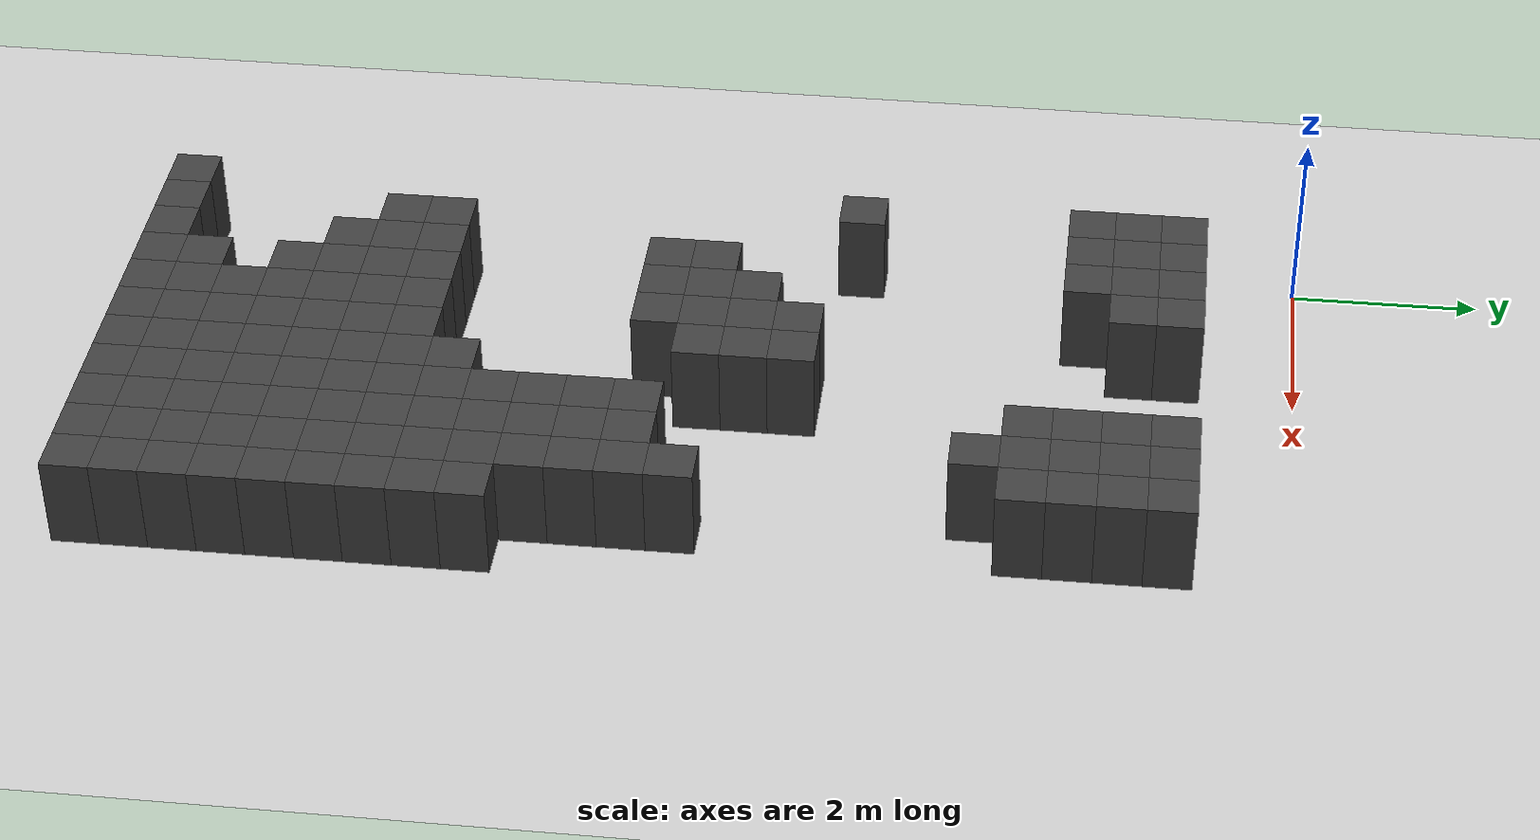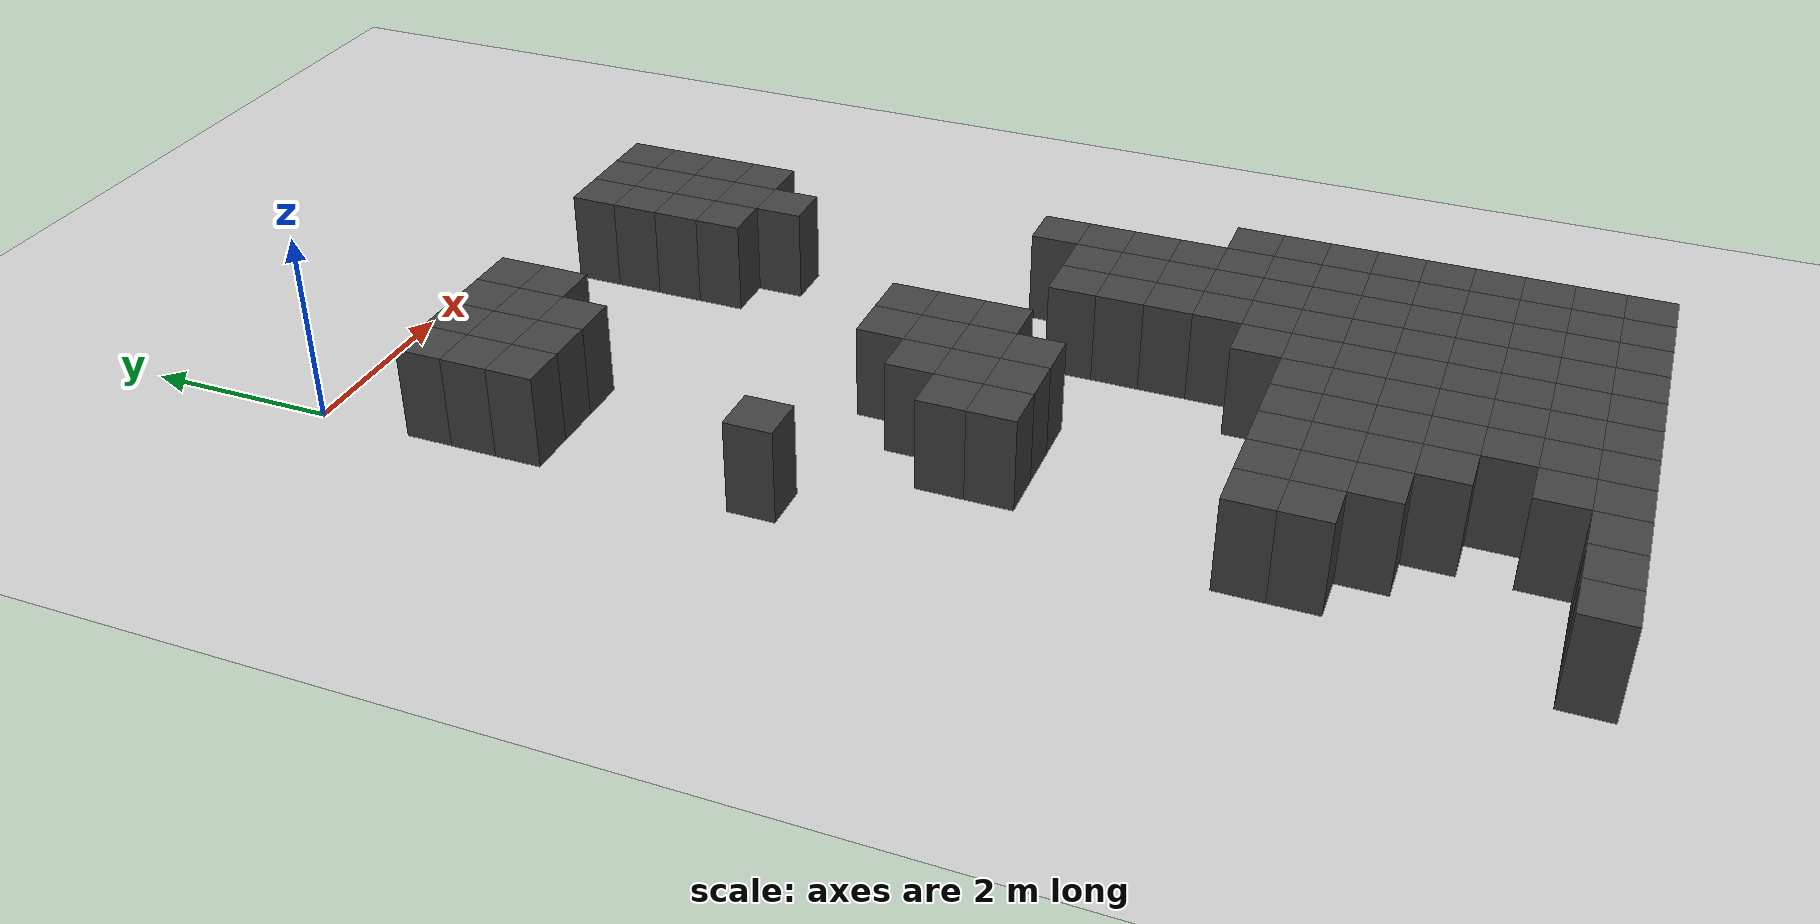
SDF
<sdf version="1.7">
 <world name="map_9826">
  <model name="ground_plane">
   <static>true</static>
   <link name="link">
    <collision name="collision">
     <geometry><plane><normal>0 0 1</normal><size>200 200</size></plane></geometry>
    </collision>
    <visual name="visual">
     <geometry><plane><normal>0 0 1</normal><size>200 200</size></plane></geometry>
     <material><ambient>0.8 0.8 0.8 1</ambient><diffuse>0.8 0.8 0.8 1</diffuse></material>
    </visual>
   </link>
  </model>
  <model name="maze_environment">
   <static>true</static>
   <link name="wall_594">
    <pose>0.250 -1.250 0.500 0 0 0</pose>
    <collision name="col"><geometry><box><size>0.5 0.5 1.0</size></box></geometry></collision>
    <visual name="vis">
     <geometry><box><size>0.5 0.5 1.0</size></box></geometry>
     <material><ambient>0.15 0.15 0.15 1</ambient><diffuse>0.25 0.25 0.25 1</diffuse></material>
    </visual>
   </link>
   <link name="wall_595">
    <pose>0.750 -1.250 0.500 0 0 0</pose>
    <collision name="col"><geometry><box><size>0.5 0.5 1.0</size></box></geometry></collision>
    <visual name="vis">
     <geometry><box><size>0.5 0.5 1.0</size></box></geometry>
     <material><ambient>0.15 0.15 0.15 1</ambient><diffuse>0.25 0.25 0.25 1</diffuse></material>
    </visual>
   </link>
   <link name="wall_596">
    <pose>1.250 -1.250 0.500 0 0 0</pose>
    <collision name="col"><geometry><box><size>0.5 0.5 1.0</size></box></geometry></collision>
    <visual name="vis">
     <geometry><box><size>0.5 0.5 1.0</size></box></geometry>
     <material><ambient>0.15 0.15 0.15 1</ambient><diffuse>0.25 0.25 0.25 1</diffuse></material>
    </visual>
   </link>
   <link name="wall_597">
    <pose>1.750 -1.250 0.500 0 0 0</pose>
    <collision name="col"><geometry><box><size>0.5 0.5 1.0</size></box></geometry></collision>
    <visual name="vis">
     <geometry><box><size>0.5 0.5 1.0</size></box></geometry>
     <material><ambient>0.15 0.15 0.15 1</ambient><diffuse>0.25 0.25 0.25 1</diffuse></material>
    </visual>
   </link>
   <link name="wall_598">
    <pose>3.750 -1.250 0.500 0 0 0</pose>
    <collision name="col"><geometry><box><size>0.5 0.5 1.0</size></box></geometry></collision>
    <visual name="vis">
     <geometry><box><size>0.5 0.5 1.0</size></box></geometry>
     <material><ambient>0.15 0.15 0.15 1</ambient><diffuse>0.25 0.25 0.25 1</diffuse></material>
    </visual>
   </link>
   <link name="wall_599">
    <pose>4.250 -1.250 0.500 0 0 0</pose>
    <collision name="col"><geometry><box><size>0.5 0.5 1.0</size></box></geometry></collision>
    <visual name="vis">
     <geometry><box><size>0.5 0.5 1.0</size></box></geometry>
     <material><ambient>0.15 0.15 0.15 1</ambient><diffuse>0.25 0.25 0.25 1</diffuse></material>
    </visual>
   </link>
   <link name="wall_600">
    <pose>4.750 -1.250 0.500 0 0 0</pose>
    <collision name="col"><geometry><box><size>0.5 0.5 1.0</size></box></geometry></collision>
    <visual name="vis">
     <geometry><box><size>0.5 0.5 1.0</size></box></geometry>
     <material><ambient>0.15 0.15 0.15 1</ambient><diffuse>0.25 0.25 0.25 1</diffuse></material>
    </visual>
   </link>
   <link name="wall_617">
    <pose>0.250 -1.750 0.500 0 0 0</pose>
    <collision name="col"><geometry><box><size>0.5 0.5 1.0</size></box></geometry></collision>
    <visual name="vis">
     <geometry><box><size>0.5 0.5 1.0</size></box></geometry>
     <material><ambient>0.15 0.15 0.15 1</ambient><diffuse>0.25 0.25 0.25 1</diffuse></material>
    </visual>
   </link>
   <link name="wall_618">
    <pose>0.750 -1.750 0.500 0 0 0</pose>
    <collision name="col"><geometry><box><size>0.5 0.5 1.0</size></box></geometry></collision>
    <visual name="vis">
     <geometry><box><size>0.5 0.5 1.0</size></box></geometry>
     <material><ambient>0.15 0.15 0.15 1</ambient><diffuse>0.25 0.25 0.25 1</diffuse></material>
    </visual>
   </link>
   <link name="wall_619">
    <pose>1.250 -1.750 0.500 0 0 0</pose>
    <collision name="col"><geometry><box><size>0.5 0.5 1.0</size></box></geometry></collision>
    <visual name="vis">
     <geometry><box><size>0.5 0.5 1.0</size></box></geometry>
     <material><ambient>0.15 0.15 0.15 1</ambient><diffuse>0.25 0.25 0.25 1</diffuse></material>
    </visual>
   </link>
   <link name="wall_620">
    <pose>1.750 -1.750 0.500 0 0 0</pose>
    <collision name="col"><geometry><box><size>0.5 0.5 1.0</size></box></geometry></collision>
    <visual name="vis">
     <geometry><box><size>0.5 0.5 1.0</size></box></geometry>
     <material><ambient>0.15 0.15 0.15 1</ambient><diffuse>0.25 0.25 0.25 1</diffuse></material>
    </visual>
   </link>
   <link name="wall_621">
    <pose>3.750 -1.750 0.500 0 0 0</pose>
    <collision name="col"><geometry><box><size>0.5 0.5 1.0</size></box></geometry></collision>
    <visual name="vis">
     <geometry><box><size>0.5 0.5 1.0</size></box></geometry>
     <material><ambient>0.15 0.15 0.15 1</ambient><diffuse>0.25 0.25 0.25 1</diffuse></material>
    </visual>
   </link>
   <link name="wall_622">
    <pose>4.250 -1.750 0.500 0 0 0</pose>
    <collision name="col"><geometry><box><size>0.5 0.5 1.0</size></box></geometry></collision>
    <visual name="vis">
     <geometry><box><size>0.5 0.5 1.0</size></box></geometry>
     <material><ambient>0.15 0.15 0.15 1</ambient><diffuse>0.25 0.25 0.25 1</diffuse></material>
    </visual>
   </link>
   <link name="wall_623">
    <pose>4.750 -1.750 0.500 0 0 0</pose>
    <collision name="col"><geometry><box><size>0.5 0.5 1.0</size></box></geometry></collision>
    <visual name="vis">
     <geometry><box><size>0.5 0.5 1.0</size></box></geometry>
     <material><ambient>0.15 0.15 0.15 1</ambient><diffuse>0.25 0.25 0.25 1</diffuse></material>
    </visual>
   </link>
   <link name="wall_639">
    <pose>0.250 -2.250 0.500 0 0 0</pose>
    <collision name="col"><geometry><box><size>0.5 0.5 1.0</size></box></geometry></collision>
    <visual name="vis">
     <geometry><box><size>0.5 0.5 1.0</size></box></geometry>
     <material><ambient>0.15 0.15 0.15 1</ambient><diffuse>0.25 0.25 0.25 1</diffuse></material>
    </visual>
   </link>
   <link name="wall_640">
    <pose>0.750 -2.250 0.500 0 0 0</pose>
    <collision name="col"><geometry><box><size>0.5 0.5 1.0</size></box></geometry></collision>
    <visual name="vis">
     <geometry><box><size>0.5 0.5 1.0</size></box></geometry>
     <material><ambient>0.15 0.15 0.15 1</ambient><diffuse>0.25 0.25 0.25 1</diffuse></material>
    </visual>
   </link>
   <link name="wall_641">
    <pose>1.250 -2.250 0.500 0 0 0</pose>
    <collision name="col"><geometry><box><size>0.5 0.5 1.0</size></box></geometry></collision>
    <visual name="vis">
     <geometry><box><size>0.5 0.5 1.0</size></box></geometry>
     <material><ambient>0.15 0.15 0.15 1</ambient><diffuse>0.25 0.25 0.25 1</diffuse></material>
    </visual>
   </link>
   <link name="wall_642">
    <pose>3.750 -2.250 0.500 0 0 0</pose>
    <collision name="col"><geometry><box><size>0.5 0.5 1.0</size></box></geometry></collision>
    <visual name="vis">
     <geometry><box><size>0.5 0.5 1.0</size></box></geometry>
     <material><ambient>0.15 0.15 0.15 1</ambient><diffuse>0.25 0.25 0.25 1</diffuse></material>
    </visual>
   </link>
   <link name="wall_643">
    <pose>4.250 -2.250 0.500 0 0 0</pose>
    <collision name="col"><geometry><box><size>0.5 0.5 1.0</size></box></geometry></collision>
    <visual name="vis">
     <geometry><box><size>0.5 0.5 1.0</size></box></geometry>
     <material><ambient>0.15 0.15 0.15 1</ambient><diffuse>0.25 0.25 0.25 1</diffuse></material>
    </visual>
   </link>
   <link name="wall_644">
    <pose>4.750 -2.250 0.500 0 0 0</pose>
    <collision name="col"><geometry><box><size>0.5 0.5 1.0</size></box></geometry></collision>
    <visual name="vis">
     <geometry><box><size>0.5 0.5 1.0</size></box></geometry>
     <material><ambient>0.15 0.15 0.15 1</ambient><diffuse>0.25 0.25 0.25 1</diffuse></material>
    </visual>
   </link>
   <link name="wall_657">
    <pose>3.750 -2.750 0.500 0 0 0</pose>
    <collision name="col"><geometry><box><size>0.5 0.5 1.0</size></box></geometry></collision>
    <visual name="vis">
     <geometry><box><size>0.5 0.5 1.0</size></box></geometry>
     <material><ambient>0.15 0.15 0.15 1</ambient><diffuse>0.25 0.25 0.25 1</diffuse></material>
    </visual>
   </link>
   <link name="wall_658">
    <pose>4.250 -2.750 0.500 0 0 0</pose>
    <collision name="col"><geometry><box><size>0.5 0.5 1.0</size></box></geometry></collision>
    <visual name="vis">
     <geometry><box><size>0.5 0.5 1.0</size></box></geometry>
     <material><ambient>0.15 0.15 0.15 1</ambient><diffuse>0.25 0.25 0.25 1</diffuse></material>
    </visual>
   </link>
   <link name="wall_659">
    <pose>4.750 -2.750 0.500 0 0 0</pose>
    <collision name="col"><geometry><box><size>0.5 0.5 1.0</size></box></geometry></collision>
    <visual name="vis">
     <geometry><box><size>0.5 0.5 1.0</size></box></geometry>
     <material><ambient>0.15 0.15 0.15 1</ambient><diffuse>0.25 0.25 0.25 1</diffuse></material>
    </visual>
   </link>
   <link name="wall_672">
    <pose>4.250 -3.250 0.500 0 0 0</pose>
    <collision name="col"><geometry><box><size>0.5 0.5 1.0</size></box></geometry></collision>
    <visual name="vis">
     <geometry><box><size>0.5 0.5 1.0</size></box></geometry>
     <material><ambient>0.15 0.15 0.15 1</ambient><diffuse>0.25 0.25 0.25 1</diffuse></material>
    </visual>
   </link>
   <link name="wall_709">
    <pose>0.250 -4.750 0.500 0 0 0</pose>
    <collision name="col"><geometry><box><size>0.5 0.5 1.0</size></box></geometry></collision>
    <visual name="vis">
     <geometry><box><size>0.5 0.5 1.0</size></box></geometry>
     <material><ambient>0.15 0.15 0.15 1</ambient><diffuse>0.25 0.25 0.25 1</diffuse></material>
    </visual>
   </link>
   <link name="wall_726">
    <pose>2.250 -5.250 0.500 0 0 0</pose>
    <collision name="col"><geometry><box><size>0.5 0.5 1.0</size></box></geometry></collision>
    <visual name="vis">
     <geometry><box><size>0.5 0.5 1.0</size></box></geometry>
     <material><ambient>0.15 0.15 0.15 1</ambient><diffuse>0.25 0.25 0.25 1</diffuse></material>
    </visual>
   </link>
   <link name="wall_727">
    <pose>2.750 -5.250 0.500 0 0 0</pose>
    <collision name="col"><geometry><box><size>0.5 0.5 1.0</size></box></geometry></collision>
    <visual name="vis">
     <geometry><box><size>0.5 0.5 1.0</size></box></geometry>
     <material><ambient>0.15 0.15 0.15 1</ambient><diffuse>0.25 0.25 0.25 1</diffuse></material>
    </visual>
   </link>
   <link name="wall_745">
    <pose>1.750 -5.750 0.500 0 0 0</pose>
    <collision name="col"><geometry><box><size>0.5 0.5 1.0</size></box></geometry></collision>
    <visual name="vis">
     <geometry><box><size>0.5 0.5 1.0</size></box></geometry>
     <material><ambient>0.15 0.15 0.15 1</ambient><diffuse>0.25 0.25 0.25 1</diffuse></material>
    </visual>
   </link>
   <link name="wall_746">
    <pose>2.250 -5.750 0.500 0 0 0</pose>
    <collision name="col"><geometry><box><size>0.5 0.5 1.0</size></box></geometry></collision>
    <visual name="vis">
     <geometry><box><size>0.5 0.5 1.0</size></box></geometry>
     <material><ambient>0.15 0.15 0.15 1</ambient><diffuse>0.25 0.25 0.25 1</diffuse></material>
    </visual>
   </link>
   <link name="wall_747">
    <pose>2.750 -5.750 0.500 0 0 0</pose>
    <collision name="col"><geometry><box><size>0.5 0.5 1.0</size></box></geometry></collision>
    <visual name="vis">
     <geometry><box><size>0.5 0.5 1.0</size></box></geometry>
     <material><ambient>0.15 0.15 0.15 1</ambient><diffuse>0.25 0.25 0.25 1</diffuse></material>
    </visual>
   </link>
   <link name="wall_766">
    <pose>1.250 -6.250 0.500 0 0 0</pose>
    <collision name="col"><geometry><box><size>0.5 0.5 1.0</size></box></geometry></collision>
    <visual name="vis">
     <geometry><box><size>0.5 0.5 1.0</size></box></geometry>
     <material><ambient>0.15 0.15 0.15 1</ambient><diffuse>0.25 0.25 0.25 1</diffuse></material>
    </visual>
   </link>
   <link name="wall_767">
    <pose>1.750 -6.250 0.500 0 0 0</pose>
    <collision name="col"><geometry><box><size>0.5 0.5 1.0</size></box></geometry></collision>
    <visual name="vis">
     <geometry><box><size>0.5 0.5 1.0</size></box></geometry>
     <material><ambient>0.15 0.15 0.15 1</ambient><diffuse>0.25 0.25 0.25 1</diffuse></material>
    </visual>
   </link>
   <link name="wall_768">
    <pose>2.250 -6.250 0.500 0 0 0</pose>
    <collision name="col"><geometry><box><size>0.5 0.5 1.0</size></box></geometry></collision>
    <visual name="vis">
     <geometry><box><size>0.5 0.5 1.0</size></box></geometry>
     <material><ambient>0.15 0.15 0.15 1</ambient><diffuse>0.25 0.25 0.25 1</diffuse></material>
    </visual>
   </link>
   <link name="wall_769">
    <pose>2.750 -6.250 0.500 0 0 0</pose>
    <collision name="col"><geometry><box><size>0.5 0.5 1.0</size></box></geometry></collision>
    <visual name="vis">
     <geometry><box><size>0.5 0.5 1.0</size></box></geometry>
     <material><ambient>0.15 0.15 0.15 1</ambient><diffuse>0.25 0.25 0.25 1</diffuse></material>
    </visual>
   </link>
   <link name="wall_770">
    <pose>4.750 -6.250 0.500 0 0 0</pose>
    <collision name="col"><geometry><box><size>0.5 0.5 1.0</size></box></geometry></collision>
    <visual name="vis">
     <geometry><box><size>0.5 0.5 1.0</size></box></geometry>
     <material><ambient>0.15 0.15 0.15 1</ambient><diffuse>0.25 0.25 0.25 1</diffuse></material>
    </visual>
   </link>
   <link name="wall_788">
    <pose>1.250 -6.750 0.500 0 0 0</pose>
    <collision name="col"><geometry><box><size>0.5 0.5 1.0</size></box></geometry></collision>
    <visual name="vis">
     <geometry><box><size>0.5 0.5 1.0</size></box></geometry>
     <material><ambient>0.15 0.15 0.15 1</ambient><diffuse>0.25 0.25 0.25 1</diffuse></material>
    </visual>
   </link>
   <link name="wall_789">
    <pose>1.750 -6.750 0.500 0 0 0</pose>
    <collision name="col"><geometry><box><size>0.5 0.5 1.0</size></box></geometry></collision>
    <visual name="vis">
     <geometry><box><size>0.5 0.5 1.0</size></box></geometry>
     <material><ambient>0.15 0.15 0.15 1</ambient><diffuse>0.25 0.25 0.25 1</diffuse></material>
    </visual>
   </link>
   <link name="wall_790">
    <pose>2.250 -6.750 0.500 0 0 0</pose>
    <collision name="col"><geometry><box><size>0.5 0.5 1.0</size></box></geometry></collision>
    <visual name="vis">
     <geometry><box><size>0.5 0.5 1.0</size></box></geometry>
     <material><ambient>0.15 0.15 0.15 1</ambient><diffuse>0.25 0.25 0.25 1</diffuse></material>
    </visual>
   </link>
   <link name="wall_791">
    <pose>3.750 -6.750 0.500 0 0 0</pose>
    <collision name="col"><geometry><box><size>0.5 0.5 1.0</size></box></geometry></collision>
    <visual name="vis">
     <geometry><box><size>0.5 0.5 1.0</size></box></geometry>
     <material><ambient>0.15 0.15 0.15 1</ambient><diffuse>0.25 0.25 0.25 1</diffuse></material>
    </visual>
   </link>
   <link name="wall_792">
    <pose>4.250 -6.750 0.500 0 0 0</pose>
    <collision name="col"><geometry><box><size>0.5 0.5 1.0</size></box></geometry></collision>
    <visual name="vis">
     <geometry><box><size>0.5 0.5 1.0</size></box></geometry>
     <material><ambient>0.15 0.15 0.15 1</ambient><diffuse>0.25 0.25 0.25 1</diffuse></material>
    </visual>
   </link>
   <link name="wall_793">
    <pose>4.750 -6.750 0.500 0 0 0</pose>
    <collision name="col"><geometry><box><size>0.5 0.5 1.0</size></box></geometry></collision>
    <visual name="vis">
     <geometry><box><size>0.5 0.5 1.0</size></box></geometry>
     <material><ambient>0.15 0.15 0.15 1</ambient><diffuse>0.25 0.25 0.25 1</diffuse></material>
    </visual>
   </link>
   <link name="wall_809">
    <pose>3.750 -7.250 0.500 0 0 0</pose>
    <collision name="col"><geometry><box><size>0.5 0.5 1.0</size></box></geometry></collision>
    <visual name="vis">
     <geometry><box><size>0.5 0.5 1.0</size></box></geometry>
     <material><ambient>0.15 0.15 0.15 1</ambient><diffuse>0.25 0.25 0.25 1</diffuse></material>
    </visual>
   </link>
   <link name="wall_810">
    <pose>4.250 -7.250 0.500 0 0 0</pose>
    <collision name="col"><geometry><box><size>0.5 0.5 1.0</size></box></geometry></collision>
    <visual name="vis">
     <geometry><box><size>0.5 0.5 1.0</size></box></geometry>
     <material><ambient>0.15 0.15 0.15 1</ambient><diffuse>0.25 0.25 0.25 1</diffuse></material>
    </visual>
   </link>
   <link name="wall_811">
    <pose>4.750 -7.250 0.500 0 0 0</pose>
    <collision name="col"><geometry><box><size>0.5 0.5 1.0</size></box></geometry></collision>
    <visual name="vis">
     <geometry><box><size>0.5 0.5 1.0</size></box></geometry>
     <material><ambient>0.15 0.15 0.15 1</ambient><diffuse>0.25 0.25 0.25 1</diffuse></material>
    </visual>
   </link>
   <link name="wall_825">
    <pose>3.750 -7.750 0.500 0 0 0</pose>
    <collision name="col"><geometry><box><size>0.5 0.5 1.0</size></box></geometry></collision>
    <visual name="vis">
     <geometry><box><size>0.5 0.5 1.0</size></box></geometry>
     <material><ambient>0.15 0.15 0.15 1</ambient><diffuse>0.25 0.25 0.25 1</diffuse></material>
    </visual>
   </link>
   <link name="wall_826">
    <pose>4.250 -7.750 0.500 0 0 0</pose>
    <collision name="col"><geometry><box><size>0.5 0.5 1.0</size></box></geometry></collision>
    <visual name="vis">
     <geometry><box><size>0.5 0.5 1.0</size></box></geometry>
     <material><ambient>0.15 0.15 0.15 1</ambient><diffuse>0.25 0.25 0.25 1</diffuse></material>
    </visual>
   </link>
   <link name="wall_827">
    <pose>4.750 -7.750 0.500 0 0 0</pose>
    <collision name="col"><geometry><box><size>0.5 0.5 1.0</size></box></geometry></collision>
    <visual name="vis">
     <geometry><box><size>0.5 0.5 1.0</size></box></geometry>
     <material><ambient>0.15 0.15 0.15 1</ambient><diffuse>0.25 0.25 0.25 1</diffuse></material>
    </visual>
   </link>
   <link name="wall_844">
    <pose>3.750 -8.250 0.500 0 0 0</pose>
    <collision name="col"><geometry><box><size>0.5 0.5 1.0</size></box></geometry></collision>
    <visual name="vis">
     <geometry><box><size>0.5 0.5 1.0</size></box></geometry>
     <material><ambient>0.15 0.15 0.15 1</ambient><diffuse>0.25 0.25 0.25 1</diffuse></material>
    </visual>
   </link>
   <link name="wall_845">
    <pose>4.250 -8.250 0.500 0 0 0</pose>
    <collision name="col"><geometry><box><size>0.5 0.5 1.0</size></box></geometry></collision>
    <visual name="vis">
     <geometry><box><size>0.5 0.5 1.0</size></box></geometry>
     <material><ambient>0.15 0.15 0.15 1</ambient><diffuse>0.25 0.25 0.25 1</diffuse></material>
    </visual>
   </link>
   <link name="wall_846">
    <pose>4.750 -8.250 0.500 0 0 0</pose>
    <collision name="col"><geometry><box><size>0.5 0.5 1.0</size></box></geometry></collision>
    <visual name="vis">
     <geometry><box><size>0.5 0.5 1.0</size></box></geometry>
     <material><ambient>0.15 0.15 0.15 1</ambient><diffuse>0.25 0.25 0.25 1</diffuse></material>
    </visual>
   </link>
   <link name="wall_847">
    <pose>5.250 -8.250 0.500 0 0 0</pose>
    <collision name="col"><geometry><box><size>0.5 0.5 1.0</size></box></geometry></collision>
    <visual name="vis">
     <geometry><box><size>0.5 0.5 1.0</size></box></geometry>
     <material><ambient>0.15 0.15 0.15 1</ambient><diffuse>0.25 0.25 0.25 1</diffuse></material>
    </visual>
   </link>
   <link name="wall_863">
    <pose>3.250 -8.750 0.500 0 0 0</pose>
    <collision name="col"><geometry><box><size>0.5 0.5 1.0</size></box></geometry></collision>
    <visual name="vis">
     <geometry><box><size>0.5 0.5 1.0</size></box></geometry>
     <material><ambient>0.15 0.15 0.15 1</ambient><diffuse>0.25 0.25 0.25 1</diffuse></material>
    </visual>
   </link>
   <link name="wall_864">
    <pose>3.750 -8.750 0.500 0 0 0</pose>
    <collision name="col"><geometry><box><size>0.5 0.5 1.0</size></box></geometry></collision>
    <visual name="vis">
     <geometry><box><size>0.5 0.5 1.0</size></box></geometry>
     <material><ambient>0.15 0.15 0.15 1</ambient><diffuse>0.25 0.25 0.25 1</diffuse></material>
    </visual>
   </link>
   <link name="wall_865">
    <pose>4.250 -8.750 0.500 0 0 0</pose>
    <collision name="col"><geometry><box><size>0.5 0.5 1.0</size></box></geometry></collision>
    <visual name="vis">
     <geometry><box><size>0.5 0.5 1.0</size></box></geometry>
     <material><ambient>0.15 0.15 0.15 1</ambient><diffuse>0.25 0.25 0.25 1</diffuse></material>
    </visual>
   </link>
   <link name="wall_866">
    <pose>4.750 -8.750 0.500 0 0 0</pose>
    <collision name="col"><geometry><box><size>0.5 0.5 1.0</size></box></geometry></collision>
    <visual name="vis">
     <geometry><box><size>0.5 0.5 1.0</size></box></geometry>
     <material><ambient>0.15 0.15 0.15 1</ambient><diffuse>0.25 0.25 0.25 1</diffuse></material>
    </visual>
   </link>
   <link name="wall_867">
    <pose>5.250 -8.750 0.500 0 0 0</pose>
    <collision name="col"><geometry><box><size>0.5 0.5 1.0</size></box></geometry></collision>
    <visual name="vis">
     <geometry><box><size>0.5 0.5 1.0</size></box></geometry>
     <material><ambient>0.15 0.15 0.15 1</ambient><diffuse>0.25 0.25 0.25 1</diffuse></material>
    </visual>
   </link>
   <link name="wall_884">
    <pose>0.750 -9.250 0.500 0 0 0</pose>
    <collision name="col"><geometry><box><size>0.5 0.5 1.0</size></box></geometry></collision>
    <visual name="vis">
     <geometry><box><size>0.5 0.5 1.0</size></box></geometry>
     <material><ambient>0.15 0.15 0.15 1</ambient><diffuse>0.25 0.25 0.25 1</diffuse></material>
    </visual>
   </link>
   <link name="wall_885">
    <pose>1.250 -9.250 0.500 0 0 0</pose>
    <collision name="col"><geometry><box><size>0.5 0.5 1.0</size></box></geometry></collision>
    <visual name="vis">
     <geometry><box><size>0.5 0.5 1.0</size></box></geometry>
     <material><ambient>0.15 0.15 0.15 1</ambient><diffuse>0.25 0.25 0.25 1</diffuse></material>
    </visual>
   </link>
   <link name="wall_886">
    <pose>1.750 -9.250 0.500 0 0 0</pose>
    <collision name="col"><geometry><box><size>0.5 0.5 1.0</size></box></geometry></collision>
    <visual name="vis">
     <geometry><box><size>0.5 0.5 1.0</size></box></geometry>
     <material><ambient>0.15 0.15 0.15 1</ambient><diffuse>0.25 0.25 0.25 1</diffuse></material>
    </visual>
   </link>
   <link name="wall_887">
    <pose>2.250 -9.250 0.500 0 0 0</pose>
    <collision name="col"><geometry><box><size>0.5 0.5 1.0</size></box></geometry></collision>
    <visual name="vis">
     <geometry><box><size>0.5 0.5 1.0</size></box></geometry>
     <material><ambient>0.15 0.15 0.15 1</ambient><diffuse>0.25 0.25 0.25 1</diffuse></material>
    </visual>
   </link>
   <link name="wall_888">
    <pose>2.750 -9.250 0.500 0 0 0</pose>
    <collision name="col"><geometry><box><size>0.5 0.5 1.0</size></box></geometry></collision>
    <visual name="vis">
     <geometry><box><size>0.5 0.5 1.0</size></box></geometry>
     <material><ambient>0.15 0.15 0.15 1</ambient><diffuse>0.25 0.25 0.25 1</diffuse></material>
    </visual>
   </link>
   <link name="wall_889">
    <pose>3.250 -9.250 0.500 0 0 0</pose>
    <collision name="col"><geometry><box><size>0.5 0.5 1.0</size></box></geometry></collision>
    <visual name="vis">
     <geometry><box><size>0.5 0.5 1.0</size></box></geometry>
     <material><ambient>0.15 0.15 0.15 1</ambient><diffuse>0.25 0.25 0.25 1</diffuse></material>
    </visual>
   </link>
   <link name="wall_890">
    <pose>3.750 -9.250 0.500 0 0 0</pose>
    <collision name="col"><geometry><box><size>0.5 0.5 1.0</size></box></geometry></collision>
    <visual name="vis">
     <geometry><box><size>0.5 0.5 1.0</size></box></geometry>
     <material><ambient>0.15 0.15 0.15 1</ambient><diffuse>0.25 0.25 0.25 1</diffuse></material>
    </visual>
   </link>
   <link name="wall_891">
    <pose>4.250 -9.250 0.500 0 0 0</pose>
    <collision name="col"><geometry><box><size>0.5 0.5 1.0</size></box></geometry></collision>
    <visual name="vis">
     <geometry><box><size>0.5 0.5 1.0</size></box></geometry>
     <material><ambient>0.15 0.15 0.15 1</ambient><diffuse>0.25 0.25 0.25 1</diffuse></material>
    </visual>
   </link>
   <link name="wall_892">
    <pose>4.750 -9.250 0.500 0 0 0</pose>
    <collision name="col"><geometry><box><size>0.5 0.5 1.0</size></box></geometry></collision>
    <visual name="vis">
     <geometry><box><size>0.5 0.5 1.0</size></box></geometry>
     <material><ambient>0.15 0.15 0.15 1</ambient><diffuse>0.25 0.25 0.25 1</diffuse></material>
    </visual>
   </link>
   <link name="wall_893">
    <pose>5.250 -9.250 0.500 0 0 0</pose>
    <collision name="col"><geometry><box><size>0.5 0.5 1.0</size></box></geometry></collision>
    <visual name="vis">
     <geometry><box><size>0.5 0.5 1.0</size></box></geometry>
     <material><ambient>0.15 0.15 0.15 1</ambient><diffuse>0.25 0.25 0.25 1</diffuse></material>
    </visual>
   </link>
   <link name="wall_909">
    <pose>0.750 -9.750 0.500 0 0 0</pose>
    <collision name="col"><geometry><box><size>0.5 0.5 1.0</size></box></geometry></collision>
    <visual name="vis">
     <geometry><box><size>0.5 0.5 1.0</size></box></geometry>
     <material><ambient>0.15 0.15 0.15 1</ambient><diffuse>0.25 0.25 0.25 1</diffuse></material>
    </visual>
   </link>
   <link name="wall_910">
    <pose>1.250 -9.750 0.500 0 0 0</pose>
    <collision name="col"><geometry><box><size>0.5 0.5 1.0</size></box></geometry></collision>
    <visual name="vis">
     <geometry><box><size>0.5 0.5 1.0</size></box></geometry>
     <material><ambient>0.15 0.15 0.15 1</ambient><diffuse>0.25 0.25 0.25 1</diffuse></material>
    </visual>
   </link>
   <link name="wall_911">
    <pose>1.750 -9.750 0.500 0 0 0</pose>
    <collision name="col"><geometry><box><size>0.5 0.5 1.0</size></box></geometry></collision>
    <visual name="vis">
     <geometry><box><size>0.5 0.5 1.0</size></box></geometry>
     <material><ambient>0.15 0.15 0.15 1</ambient><diffuse>0.25 0.25 0.25 1</diffuse></material>
    </visual>
   </link>
   <link name="wall_912">
    <pose>2.250 -9.750 0.500 0 0 0</pose>
    <collision name="col"><geometry><box><size>0.5 0.5 1.0</size></box></geometry></collision>
    <visual name="vis">
     <geometry><box><size>0.5 0.5 1.0</size></box></geometry>
     <material><ambient>0.15 0.15 0.15 1</ambient><diffuse>0.25 0.25 0.25 1</diffuse></material>
    </visual>
   </link>
   <link name="wall_913">
    <pose>2.750 -9.750 0.500 0 0 0</pose>
    <collision name="col"><geometry><box><size>0.5 0.5 1.0</size></box></geometry></collision>
    <visual name="vis">
     <geometry><box><size>0.5 0.5 1.0</size></box></geometry>
     <material><ambient>0.15 0.15 0.15 1</ambient><diffuse>0.25 0.25 0.25 1</diffuse></material>
    </visual>
   </link>
   <link name="wall_914">
    <pose>3.250 -9.750 0.500 0 0 0</pose>
    <collision name="col"><geometry><box><size>0.5 0.5 1.0</size></box></geometry></collision>
    <visual name="vis">
     <geometry><box><size>0.5 0.5 1.0</size></box></geometry>
     <material><ambient>0.15 0.15 0.15 1</ambient><diffuse>0.25 0.25 0.25 1</diffuse></material>
    </visual>
   </link>
   <link name="wall_915">
    <pose>3.750 -9.750 0.500 0 0 0</pose>
    <collision name="col"><geometry><box><size>0.5 0.5 1.0</size></box></geometry></collision>
    <visual name="vis">
     <geometry><box><size>0.5 0.5 1.0</size></box></geometry>
     <material><ambient>0.15 0.15 0.15 1</ambient><diffuse>0.25 0.25 0.25 1</diffuse></material>
    </visual>
   </link>
   <link name="wall_916">
    <pose>4.250 -9.750 0.500 0 0 0</pose>
    <collision name="col"><geometry><box><size>0.5 0.5 1.0</size></box></geometry></collision>
    <visual name="vis">
     <geometry><box><size>0.5 0.5 1.0</size></box></geometry>
     <material><ambient>0.15 0.15 0.15 1</ambient><diffuse>0.25 0.25 0.25 1</diffuse></material>
    </visual>
   </link>
   <link name="wall_917">
    <pose>4.750 -9.750 0.500 0 0 0</pose>
    <collision name="col"><geometry><box><size>0.5 0.5 1.0</size></box></geometry></collision>
    <visual name="vis">
     <geometry><box><size>0.5 0.5 1.0</size></box></geometry>
     <material><ambient>0.15 0.15 0.15 1</ambient><diffuse>0.25 0.25 0.25 1</diffuse></material>
    </visual>
   </link>
   <link name="wall_918">
    <pose>5.250 -9.750 0.500 0 0 0</pose>
    <collision name="col"><geometry><box><size>0.5 0.5 1.0</size></box></geometry></collision>
    <visual name="vis">
     <geometry><box><size>0.5 0.5 1.0</size></box></geometry>
     <material><ambient>0.15 0.15 0.15 1</ambient><diffuse>0.25 0.25 0.25 1</diffuse></material>
    </visual>
   </link>
   <link name="wall_933">
    <pose>1.250 -10.250 0.500 0 0 0</pose>
    <collision name="col"><geometry><box><size>0.5 0.5 1.0</size></box></geometry></collision>
    <visual name="vis">
     <geometry><box><size>0.5 0.5 1.0</size></box></geometry>
     <material><ambient>0.15 0.15 0.15 1</ambient><diffuse>0.25 0.25 0.25 1</diffuse></material>
    </visual>
   </link>
   <link name="wall_934">
    <pose>1.750 -10.250 0.500 0 0 0</pose>
    <collision name="col"><geometry><box><size>0.5 0.5 1.0</size></box></geometry></collision>
    <visual name="vis">
     <geometry><box><size>0.5 0.5 1.0</size></box></geometry>
     <material><ambient>0.15 0.15 0.15 1</ambient><diffuse>0.25 0.25 0.25 1</diffuse></material>
    </visual>
   </link>
   <link name="wall_935">
    <pose>2.250 -10.250 0.500 0 0 0</pose>
    <collision name="col"><geometry><box><size>0.5 0.5 1.0</size></box></geometry></collision>
    <visual name="vis">
     <geometry><box><size>0.5 0.5 1.0</size></box></geometry>
     <material><ambient>0.15 0.15 0.15 1</ambient><diffuse>0.25 0.25 0.25 1</diffuse></material>
    </visual>
   </link>
   <link name="wall_936">
    <pose>2.750 -10.250 0.500 0 0 0</pose>
    <collision name="col"><geometry><box><size>0.5 0.5 1.0</size></box></geometry></collision>
    <visual name="vis">
     <geometry><box><size>0.5 0.5 1.0</size></box></geometry>
     <material><ambient>0.15 0.15 0.15 1</ambient><diffuse>0.25 0.25 0.25 1</diffuse></material>
    </visual>
   </link>
   <link name="wall_937">
    <pose>3.250 -10.250 0.500 0 0 0</pose>
    <collision name="col"><geometry><box><size>0.5 0.5 1.0</size></box></geometry></collision>
    <visual name="vis">
     <geometry><box><size>0.5 0.5 1.0</size></box></geometry>
     <material><ambient>0.15 0.15 0.15 1</ambient><diffuse>0.25 0.25 0.25 1</diffuse></material>
    </visual>
   </link>
   <link name="wall_938">
    <pose>3.750 -10.250 0.500 0 0 0</pose>
    <collision name="col"><geometry><box><size>0.5 0.5 1.0</size></box></geometry></collision>
    <visual name="vis">
     <geometry><box><size>0.5 0.5 1.0</size></box></geometry>
     <material><ambient>0.15 0.15 0.15 1</ambient><diffuse>0.25 0.25 0.25 1</diffuse></material>
    </visual>
   </link>
   <link name="wall_939">
    <pose>4.250 -10.250 0.500 0 0 0</pose>
    <collision name="col"><geometry><box><size>0.5 0.5 1.0</size></box></geometry></collision>
    <visual name="vis">
     <geometry><box><size>0.5 0.5 1.0</size></box></geometry>
     <material><ambient>0.15 0.15 0.15 1</ambient><diffuse>0.25 0.25 0.25 1</diffuse></material>
    </visual>
   </link>
   <link name="wall_940">
    <pose>4.750 -10.250 0.500 0 0 0</pose>
    <collision name="col"><geometry><box><size>0.5 0.5 1.0</size></box></geometry></collision>
    <visual name="vis">
     <geometry><box><size>0.5 0.5 1.0</size></box></geometry>
     <material><ambient>0.15 0.15 0.15 1</ambient><diffuse>0.25 0.25 0.25 1</diffuse></material>
    </visual>
   </link>
   <link name="wall_941">
    <pose>5.250 -10.250 0.500 0 0 0</pose>
    <collision name="col"><geometry><box><size>0.5 0.5 1.0</size></box></geometry></collision>
    <visual name="vis">
     <geometry><box><size>0.5 0.5 1.0</size></box></geometry>
     <material><ambient>0.15 0.15 0.15 1</ambient><diffuse>0.25 0.25 0.25 1</diffuse></material>
    </visual>
   </link>
   <link name="wall_956">
    <pose>1.750 -10.750 0.500 0 0 0</pose>
    <collision name="col"><geometry><box><size>0.5 0.5 1.0</size></box></geometry></collision>
    <visual name="vis">
     <geometry><box><size>0.5 0.5 1.0</size></box></geometry>
     <material><ambient>0.15 0.15 0.15 1</ambient><diffuse>0.25 0.25 0.25 1</diffuse></material>
    </visual>
   </link>
   <link name="wall_957">
    <pose>2.250 -10.750 0.500 0 0 0</pose>
    <collision name="col"><geometry><box><size>0.5 0.5 1.0</size></box></geometry></collision>
    <visual name="vis">
     <geometry><box><size>0.5 0.5 1.0</size></box></geometry>
     <material><ambient>0.15 0.15 0.15 1</ambient><diffuse>0.25 0.25 0.25 1</diffuse></material>
    </visual>
   </link>
   <link name="wall_958">
    <pose>2.750 -10.750 0.500 0 0 0</pose>
    <collision name="col"><geometry><box><size>0.5 0.5 1.0</size></box></geometry></collision>
    <visual name="vis">
     <geometry><box><size>0.5 0.5 1.0</size></box></geometry>
     <material><ambient>0.15 0.15 0.15 1</ambient><diffuse>0.25 0.25 0.25 1</diffuse></material>
    </visual>
   </link>
   <link name="wall_959">
    <pose>3.250 -10.750 0.500 0 0 0</pose>
    <collision name="col"><geometry><box><size>0.5 0.5 1.0</size></box></geometry></collision>
    <visual name="vis">
     <geometry><box><size>0.5 0.5 1.0</size></box></geometry>
     <material><ambient>0.15 0.15 0.15 1</ambient><diffuse>0.25 0.25 0.25 1</diffuse></material>
    </visual>
   </link>
   <link name="wall_960">
    <pose>3.750 -10.750 0.500 0 0 0</pose>
    <collision name="col"><geometry><box><size>0.5 0.5 1.0</size></box></geometry></collision>
    <visual name="vis">
     <geometry><box><size>0.5 0.5 1.0</size></box></geometry>
     <material><ambient>0.15 0.15 0.15 1</ambient><diffuse>0.25 0.25 0.25 1</diffuse></material>
    </visual>
   </link>
   <link name="wall_961">
    <pose>4.250 -10.750 0.500 0 0 0</pose>
    <collision name="col"><geometry><box><size>0.5 0.5 1.0</size></box></geometry></collision>
    <visual name="vis">
     <geometry><box><size>0.5 0.5 1.0</size></box></geometry>
     <material><ambient>0.15 0.15 0.15 1</ambient><diffuse>0.25 0.25 0.25 1</diffuse></material>
    </visual>
   </link>
   <link name="wall_962">
    <pose>4.750 -10.750 0.500 0 0 0</pose>
    <collision name="col"><geometry><box><size>0.5 0.5 1.0</size></box></geometry></collision>
    <visual name="vis">
     <geometry><box><size>0.5 0.5 1.0</size></box></geometry>
     <material><ambient>0.15 0.15 0.15 1</ambient><diffuse>0.25 0.25 0.25 1</diffuse></material>
    </visual>
   </link>
   <link name="wall_963">
    <pose>5.250 -10.750 0.500 0 0 0</pose>
    <collision name="col"><geometry><box><size>0.5 0.5 1.0</size></box></geometry></collision>
    <visual name="vis">
     <geometry><box><size>0.5 0.5 1.0</size></box></geometry>
     <material><ambient>0.15 0.15 0.15 1</ambient><diffuse>0.25 0.25 0.25 1</diffuse></material>
    </visual>
   </link>
   <link name="wall_981">
    <pose>2.250 -11.250 0.500 0 0 0</pose>
    <collision name="col"><geometry><box><size>0.5 0.5 1.0</size></box></geometry></collision>
    <visual name="vis">
     <geometry><box><size>0.5 0.5 1.0</size></box></geometry>
     <material><ambient>0.15 0.15 0.15 1</ambient><diffuse>0.25 0.25 0.25 1</diffuse></material>
    </visual>
   </link>
   <link name="wall_982">
    <pose>2.750 -11.250 0.500 0 0 0</pose>
    <collision name="col"><geometry><box><size>0.5 0.5 1.0</size></box></geometry></collision>
    <visual name="vis">
     <geometry><box><size>0.5 0.5 1.0</size></box></geometry>
     <material><ambient>0.15 0.15 0.15 1</ambient><diffuse>0.25 0.25 0.25 1</diffuse></material>
    </visual>
   </link>
   <link name="wall_983">
    <pose>3.250 -11.250 0.500 0 0 0</pose>
    <collision name="col"><geometry><box><size>0.5 0.5 1.0</size></box></geometry></collision>
    <visual name="vis">
     <geometry><box><size>0.5 0.5 1.0</size></box></geometry>
     <material><ambient>0.15 0.15 0.15 1</ambient><diffuse>0.25 0.25 0.25 1</diffuse></material>
    </visual>
   </link>
   <link name="wall_984">
    <pose>3.750 -11.250 0.500 0 0 0</pose>
    <collision name="col"><geometry><box><size>0.5 0.5 1.0</size></box></geometry></collision>
    <visual name="vis">
     <geometry><box><size>0.5 0.5 1.0</size></box></geometry>
     <material><ambient>0.15 0.15 0.15 1</ambient><diffuse>0.25 0.25 0.25 1</diffuse></material>
    </visual>
   </link>
   <link name="wall_985">
    <pose>4.250 -11.250 0.500 0 0 0</pose>
    <collision name="col"><geometry><box><size>0.5 0.5 1.0</size></box></geometry></collision>
    <visual name="vis">
     <geometry><box><size>0.5 0.5 1.0</size></box></geometry>
     <material><ambient>0.15 0.15 0.15 1</ambient><diffuse>0.25 0.25 0.25 1</diffuse></material>
    </visual>
   </link>
   <link name="wall_986">
    <pose>4.750 -11.250 0.500 0 0 0</pose>
    <collision name="col"><geometry><box><size>0.5 0.5 1.0</size></box></geometry></collision>
    <visual name="vis">
     <geometry><box><size>0.5 0.5 1.0</size></box></geometry>
     <material><ambient>0.15 0.15 0.15 1</ambient><diffuse>0.25 0.25 0.25 1</diffuse></material>
    </visual>
   </link>
   <link name="wall_987">
    <pose>5.250 -11.250 0.500 0 0 0</pose>
    <collision name="col"><geometry><box><size>0.5 0.5 1.0</size></box></geometry></collision>
    <visual name="vis">
     <geometry><box><size>0.5 0.5 1.0</size></box></geometry>
     <material><ambient>0.15 0.15 0.15 1</ambient><diffuse>0.25 0.25 0.25 1</diffuse></material>
    </visual>
   </link>
   <link name="wall_1005">
    <pose>1.750 -11.750 0.500 0 0 0</pose>
    <collision name="col"><geometry><box><size>0.5 0.5 1.0</size></box></geometry></collision>
    <visual name="vis">
     <geometry><box><size>0.5 0.5 1.0</size></box></geometry>
     <material><ambient>0.15 0.15 0.15 1</ambient><diffuse>0.25 0.25 0.25 1</diffuse></material>
    </visual>
   </link>
   <link name="wall_1006">
    <pose>2.250 -11.750 0.500 0 0 0</pose>
    <collision name="col"><geometry><box><size>0.5 0.5 1.0</size></box></geometry></collision>
    <visual name="vis">
     <geometry><box><size>0.5 0.5 1.0</size></box></geometry>
     <material><ambient>0.15 0.15 0.15 1</ambient><diffuse>0.25 0.25 0.25 1</diffuse></material>
    </visual>
   </link>
   <link name="wall_1007">
    <pose>2.750 -11.750 0.500 0 0 0</pose>
    <collision name="col"><geometry><box><size>0.5 0.5 1.0</size></box></geometry></collision>
    <visual name="vis">
     <geometry><box><size>0.5 0.5 1.0</size></box></geometry>
     <material><ambient>0.15 0.15 0.15 1</ambient><diffuse>0.25 0.25 0.25 1</diffuse></material>
    </visual>
   </link>
   <link name="wall_1008">
    <pose>3.250 -11.750 0.500 0 0 0</pose>
    <collision name="col"><geometry><box><size>0.5 0.5 1.0</size></box></geometry></collision>
    <visual name="vis">
     <geometry><box><size>0.5 0.5 1.0</size></box></geometry>
     <material><ambient>0.15 0.15 0.15 1</ambient><diffuse>0.25 0.25 0.25 1</diffuse></material>
    </visual>
   </link>
   <link name="wall_1009">
    <pose>3.750 -11.750 0.500 0 0 0</pose>
    <collision name="col"><geometry><box><size>0.5 0.5 1.0</size></box></geometry></collision>
    <visual name="vis">
     <geometry><box><size>0.5 0.5 1.0</size></box></geometry>
     <material><ambient>0.15 0.15 0.15 1</ambient><diffuse>0.25 0.25 0.25 1</diffuse></material>
    </visual>
   </link>
   <link name="wall_1010">
    <pose>4.250 -11.750 0.500 0 0 0</pose>
    <collision name="col"><geometry><box><size>0.5 0.5 1.0</size></box></geometry></collision>
    <visual name="vis">
     <geometry><box><size>0.5 0.5 1.0</size></box></geometry>
     <material><ambient>0.15 0.15 0.15 1</ambient><diffuse>0.25 0.25 0.25 1</diffuse></material>
    </visual>
   </link>
   <link name="wall_1011">
    <pose>4.750 -11.750 0.500 0 0 0</pose>
    <collision name="col"><geometry><box><size>0.5 0.5 1.0</size></box></geometry></collision>
    <visual name="vis">
     <geometry><box><size>0.5 0.5 1.0</size></box></geometry>
     <material><ambient>0.15 0.15 0.15 1</ambient><diffuse>0.25 0.25 0.25 1</diffuse></material>
    </visual>
   </link>
   <link name="wall_1012">
    <pose>5.250 -11.750 0.500 0 0 0</pose>
    <collision name="col"><geometry><box><size>0.5 0.5 1.0</size></box></geometry></collision>
    <visual name="vis">
     <geometry><box><size>0.5 0.5 1.0</size></box></geometry>
     <material><ambient>0.15 0.15 0.15 1</ambient><diffuse>0.25 0.25 0.25 1</diffuse></material>
    </visual>
   </link>
   <link name="wall_1045">
    <pose>0.250 -12.250 0.500 0 0 0</pose>
    <collision name="col"><geometry><box><size>0.5 0.5 1.0</size></box></geometry></collision>
    <visual name="vis">
     <geometry><box><size>0.5 0.5 1.0</size></box></geometry>
     <material><ambient>0.15 0.15 0.15 1</ambient><diffuse>0.25 0.25 0.25 1</diffuse></material>
    </visual>
   </link>
   <link name="wall_1046">
    <pose>0.750 -12.250 0.500 0 0 0</pose>
    <collision name="col"><geometry><box><size>0.5 0.5 1.0</size></box></geometry></collision>
    <visual name="vis">
     <geometry><box><size>0.5 0.5 1.0</size></box></geometry>
     <material><ambient>0.15 0.15 0.15 1</ambient><diffuse>0.25 0.25 0.25 1</diffuse></material>
    </visual>
   </link>
   <link name="wall_1047">
    <pose>1.250 -12.250 0.500 0 0 0</pose>
    <collision name="col"><geometry><box><size>0.5 0.5 1.0</size></box></geometry></collision>
    <visual name="vis">
     <geometry><box><size>0.5 0.5 1.0</size></box></geometry>
     <material><ambient>0.15 0.15 0.15 1</ambient><diffuse>0.25 0.25 0.25 1</diffuse></material>
    </visual>
   </link>
   <link name="wall_1048">
    <pose>1.750 -12.250 0.500 0 0 0</pose>
    <collision name="col"><geometry><box><size>0.5 0.5 1.0</size></box></geometry></collision>
    <visual name="vis">
     <geometry><box><size>0.5 0.5 1.0</size></box></geometry>
     <material><ambient>0.15 0.15 0.15 1</ambient><diffuse>0.25 0.25 0.25 1</diffuse></material>
    </visual>
   </link>
   <link name="wall_1049">
    <pose>2.250 -12.250 0.500 0 0 0</pose>
    <collision name="col"><geometry><box><size>0.5 0.5 1.0</size></box></geometry></collision>
    <visual name="vis">
     <geometry><box><size>0.5 0.5 1.0</size></box></geometry>
     <material><ambient>0.15 0.15 0.15 1</ambient><diffuse>0.25 0.25 0.25 1</diffuse></material>
    </visual>
   </link>
   <link name="wall_1050">
    <pose>2.750 -12.250 0.500 0 0 0</pose>
    <collision name="col"><geometry><box><size>0.5 0.5 1.0</size></box></geometry></collision>
    <visual name="vis">
     <geometry><box><size>0.5 0.5 1.0</size></box></geometry>
     <material><ambient>0.15 0.15 0.15 1</ambient><diffuse>0.25 0.25 0.25 1</diffuse></material>
    </visual>
   </link>
   <link name="wall_1051">
    <pose>3.250 -12.250 0.500 0 0 0</pose>
    <collision name="col"><geometry><box><size>0.5 0.5 1.0</size></box></geometry></collision>
    <visual name="vis">
     <geometry><box><size>0.5 0.5 1.0</size></box></geometry>
     <material><ambient>0.15 0.15 0.15 1</ambient><diffuse>0.25 0.25 0.25 1</diffuse></material>
    </visual>
   </link>
   <link name="wall_1052">
    <pose>3.750 -12.250 0.500 0 0 0</pose>
    <collision name="col"><geometry><box><size>0.5 0.5 1.0</size></box></geometry></collision>
    <visual name="vis">
     <geometry><box><size>0.5 0.5 1.0</size></box></geometry>
     <material><ambient>0.15 0.15 0.15 1</ambient><diffuse>0.25 0.25 0.25 1</diffuse></material>
    </visual>
   </link>
   <link name="wall_1053">
    <pose>4.250 -12.250 0.500 0 0 0</pose>
    <collision name="col"><geometry><box><size>0.5 0.5 1.0</size></box></geometry></collision>
    <visual name="vis">
     <geometry><box><size>0.5 0.5 1.0</size></box></geometry>
     <material><ambient>0.15 0.15 0.15 1</ambient><diffuse>0.25 0.25 0.25 1</diffuse></material>
    </visual>
   </link>
   <link name="wall_1054">
    <pose>4.750 -12.250 0.500 0 0 0</pose>
    <collision name="col"><geometry><box><size>0.5 0.5 1.0</size></box></geometry></collision>
    <visual name="vis">
     <geometry><box><size>0.5 0.5 1.0</size></box></geometry>
     <material><ambient>0.15 0.15 0.15 1</ambient><diffuse>0.25 0.25 0.25 1</diffuse></material>
    </visual>
   </link>
   <link name="wall_1055">
    <pose>5.250 -12.250 0.500 0 0 0</pose>
    <collision name="col"><geometry><box><size>0.5 0.5 1.0</size></box></geometry></collision>
    <visual name="vis">
     <geometry><box><size>0.5 0.5 1.0</size></box></geometry>
     <material><ambient>0.15 0.15 0.15 1</ambient><diffuse>0.25 0.25 0.25 1</diffuse></material>
    </visual>
   </link>
  </model>
 </world>
</sdf>
